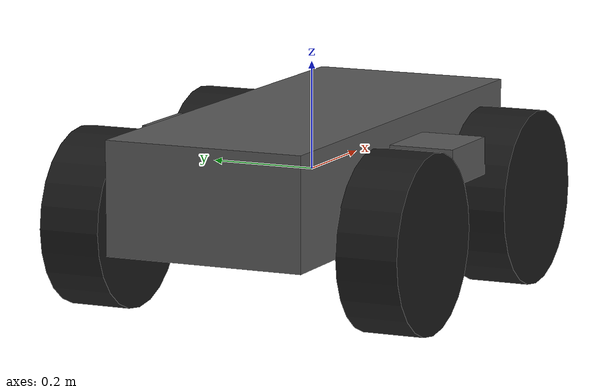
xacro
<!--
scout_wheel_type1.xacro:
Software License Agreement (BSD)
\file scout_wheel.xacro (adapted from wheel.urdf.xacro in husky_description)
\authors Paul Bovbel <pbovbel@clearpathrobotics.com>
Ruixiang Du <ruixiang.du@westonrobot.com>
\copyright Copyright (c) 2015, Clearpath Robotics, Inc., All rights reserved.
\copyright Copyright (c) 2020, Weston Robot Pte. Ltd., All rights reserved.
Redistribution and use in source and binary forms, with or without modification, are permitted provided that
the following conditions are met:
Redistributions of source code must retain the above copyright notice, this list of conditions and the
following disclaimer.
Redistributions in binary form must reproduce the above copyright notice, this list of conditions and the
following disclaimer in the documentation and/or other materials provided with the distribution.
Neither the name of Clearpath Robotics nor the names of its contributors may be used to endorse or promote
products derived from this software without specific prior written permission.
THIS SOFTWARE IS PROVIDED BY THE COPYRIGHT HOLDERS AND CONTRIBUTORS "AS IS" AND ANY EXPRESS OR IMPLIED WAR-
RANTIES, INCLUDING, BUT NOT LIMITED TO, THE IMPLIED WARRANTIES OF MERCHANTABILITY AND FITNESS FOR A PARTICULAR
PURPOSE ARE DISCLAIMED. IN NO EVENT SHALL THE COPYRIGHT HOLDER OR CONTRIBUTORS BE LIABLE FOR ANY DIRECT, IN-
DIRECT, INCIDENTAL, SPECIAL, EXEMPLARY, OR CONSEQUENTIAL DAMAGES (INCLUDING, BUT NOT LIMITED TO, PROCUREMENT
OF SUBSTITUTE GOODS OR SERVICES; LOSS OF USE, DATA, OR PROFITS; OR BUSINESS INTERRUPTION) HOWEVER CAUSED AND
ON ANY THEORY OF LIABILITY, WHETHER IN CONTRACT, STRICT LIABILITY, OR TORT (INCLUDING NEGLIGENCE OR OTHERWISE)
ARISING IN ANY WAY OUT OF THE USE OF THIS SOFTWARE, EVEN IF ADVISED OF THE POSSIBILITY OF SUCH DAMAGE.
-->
<?xml version="1.0"?>

<robot name="scout_v2"
    xmlns:xacro="http://ros.org/wiki/xacro">

    <xacro:arg name="robot_namespace" default="/" />

    <xacro:include filename="$(find scout_description)/urdf/scout_wheel_type1.xacro" />
    <xacro:include filename="$(find scout_description)/urdf/scout_wheel_type2.xacro" />
    <xacro:include filename="$(find scout_description)/urdf/gazebo.xacro" />

    <!-- Variables -->
    <xacro:property name="M_PI" value="3.14159"/>

    <!-- Vehicle Geometries -->
    <xacro:property name="base_x_size" value="0.9250000" />
    <xacro:property name="base_y_size" value="0.380000" />
    <xacro:property name="base_z_size" value="0.210000" />

    <xacro:property name="wheelbase" value="0.498" />
    <xacro:property name="track" value="0.58306" />
    <xacro:property name="wheel_vertical_offset" value="-0.0702" />

    <xacro:property name="wheel_length" value="1.1653e-01" />
    <xacro:property name="wheel_radius" value="1.6459e-01" />

    <!-- Base link -->
    <link name="base_link">
        <visual>
            <origin xyz="0 0 0.008" rpy="0 0 0" />
            <geometry>
                <box size="${base_x_size} ${base_y_size} ${base_z_size}"/>
            </geometry>
            <material name="scout_body_gray">
                <color rgba="0.35 0.35 0.35 1.0"/>
            </material>
        </visual>
        <visual>
            <origin xyz="0 0 ${base_z_size/6}" rpy="0 0 0" />
            <geometry>
                <box size="${base_x_size/6} ${base_y_size*1.65} ${base_z_size/3}"/>
            </geometry>
            <material name="scout_body_gray">
                <color rgba="0.35 0.35 0.35 1.0"/>
            </material>
        </visual>
        <collision>
            <origin xyz="0 0 0.008" rpy="0 0 0" />
            <geometry>
                <box size="${base_x_size} ${base_y_size} ${base_z_size}"/>
            </geometry>
        </collision>
        <collision>
            <origin xyz="0 0 ${base_z_size/6}" rpy="0 0 0" />
            <geometry>
                <box size="${base_x_size/6} ${base_y_size*1.65} ${base_z_size/3}"/>
            </geometry>
        </collision>
    </link>

    <link name="base_footprint"/>

    <joint name="base_footprint_joint" type="fixed">
        <origin xyz="0 0 ${wheel_vertical_offset - wheel_radius}" rpy="0 0 0" />
        <parent link="base_link" />
        <child link="base_footprint" />
    </joint>

    <link name="inertial_link">
        <inertial>
            <mass value="40" />
            <origin xyz="0.0 0.0 0.0" />
            <inertia ixx="2.288641" ixy="0" ixz="0" iyy="5.103976" iyz="0" izz="3.431465" />
        </inertial>
    </link>

    <joint name="inertial_joint" type="fixed">
        <origin xyz="0 0 0" rpy="0 0 0" />
        <parent link="base_link" />
        <child link="inertial_link" />
    </joint>

    <!-- Scout wheel macros -->
    <!-- wheel labeled from 0 to 3, conter-clockwise, starting from front right wheel -->
    <!-- motor 1 and 2 (left side) are mechanically installed in a reversed direction -->
    <xacro:scout_wheel_type1 wheel_prefix="front_right">
        <origin xyz="${wheelbase/2} ${-track/2} ${wheel_vertical_offset}" rpy="0 0 0" />
    </xacro:scout_wheel_type1>
    <xacro:scout_wheel_type2 wheel_prefix="front_left">
        <origin xyz="${wheelbase/2} ${track/2} ${wheel_vertical_offset}" rpy="0 0 0" />
    </xacro:scout_wheel_type2>
    <xacro:scout_wheel_type1 wheel_prefix="rear_left">
        <origin xyz="${-wheelbase/2} ${track/2} ${wheel_vertical_offset}" rpy="0 0 0" />
    </xacro:scout_wheel_type1>
    <xacro:scout_wheel_type2 wheel_prefix="rear_right">
        <origin xyz="${-wheelbase/2} ${-track/2} ${wheel_vertical_offset}" rpy="0 0 0" />
    </xacro:scout_wheel_type2>

</robot>

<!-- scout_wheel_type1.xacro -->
<robot xmlns:xacro="http://ros.org/wiki/xacro" name="scout_wheel">

    <xacro:macro name="scout_wheel_type1" params="wheel_prefix *joint_pose">
        <link name="${wheel_prefix}_wheel_link">
            <inertial>
                <mass value="3" />
                <origin xyz="0 0 0" />
                <inertia ixx="0.7171" ixy="0" ixz="0" iyy="0.1361" iyz="0" izz="0.7171" />
            </inertial>
            <visual>
                <origin xyz="0 0 0" rpy="${M_PI/2} 0 0" />
                <geometry>
                    <cylinder length="${wheel_length}" radius="${wheel_radius}" />
                </geometry>
                <material name="scout_wheel_black">
                    <color rgba="0.1 0.1 0.1 1.0"/>
                </material>
            </visual>
            <collision>
                <origin xyz="0 0 0" rpy="${M_PI/2} 0 0" />
                <geometry>
                    <cylinder length="${wheel_length}" radius="${wheel_radius}" />
                </geometry>
            </collision>
        </link>

        <joint name="${wheel_prefix}_wheel" type="continuous">
            <parent link="base_link"/>
            <child link="${wheel_prefix}_wheel_link"/>
            <xacro:insert_block name="joint_pose"/>
            <axis xyz="0 -1 0" rpy="0 0 0" />
        </joint>
    </xacro:macro>

</robot>

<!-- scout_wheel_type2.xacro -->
<robot xmlns:xacro="http://ros.org/wiki/xacro" name="scout_wheel">

    <xacro:macro name="scout_wheel_type2" params="wheel_prefix *joint_pose">
        <link name="${wheel_prefix}_wheel_link">
            <inertial>
                <mass value="3" />
                <origin xyz="0 0 0" />
                <inertia ixx="0.7171" ixy="0" ixz="0" iyy="0.1361" iyz="0" izz="0.7171" />
            </inertial>
            <visual>
                <origin xyz="0 0 0" rpy="${M_PI/2} 0 0" />
                <geometry>
                    <cylinder length="${wheel_length}" radius="${wheel_radius}" />
                </geometry>
                <material name="scout_wheel_black">
                    <color rgba="0.1 0.1 0.1 1.0"/>
                </material>
            </visual>
            <collision>
                <origin xyz="0 0 0" rpy="${M_PI/2} 0 0" />
                <geometry>
                    <cylinder length="${wheel_length}" radius="${wheel_radius}" />
                </geometry>
            </collision>
        </link>

        <joint name="${wheel_prefix}_wheel" type="continuous">
            <parent link="base_link"/>
            <child link="${wheel_prefix}_wheel_link"/>
            <xacro:insert_block name="joint_pose"/>
            <axis xyz="0 -1 0" rpy="0 0 0" />
        </joint>
    </xacro:macro>

</robot>

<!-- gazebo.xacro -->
<robot xmlns:xacro="http://ros.org/wiki/xacro">

    <gazebo>
        <plugin filename="gz-sim-sensors-system" name="gz::sim::systems::Sensors">
            <render_engine>ogre2</render_engine>
        </plugin>
        <plugin filename="gz-sim-diff-drive-system" name="gz::sim::systems::DiffDrive">
            <left_joint>front_left_wheel</left_joint>
            <left_joint>rear_left_wheel</left_joint>
            <right_joint>front_right_wheel</right_joint>
            <right_joint>rear_right_wheel</right_joint>
            <wheel_separation>0.58306</wheel_separation>
            <wheel_radius>0.16459</wheel_radius>
            <odom_publish_frequency>50</odom_publish_frequency>
            <topic>cmd_vel</topic>
            <odom_topic>odom</odom_topic>
            <frame_id>odom</frame_id>
            <child_frame_id>base_link</child_frame_id>
            <tf_topic>tf</tf_topic>
        </plugin>
        <plugin filename="gz-sim-joint-state-publisher-system" name="gz::sim::systems::JointStatePublisher">
            <topic>joint_states</topic>
        </plugin>
    </gazebo>

    <link name="zed_x_camera">
        <collision>
            <origin xyz="0 0 0" rpy="0 0 0"/>
            <geometry><box size="0.05 0.1 0.01"/></geometry>
        </collision>
        <inertial>
            <origin xyz="0 0 0" rpy="0 0 0"/>
            <mass value="0.01"/>
            <inertia ixx="0.01" ixy="0" ixz="0" iyy="0.01" iyz="0" izz="0.01"/>
        </inertial>
    </link>

    <joint name="base_to_zed_x_camera" type="fixed">
        <parent link="base_link"/>
        <child link="zed_x_camera"/>
        <origin xyz="0.25 0.0 0.25" rpy="0 0.349066 0"/>
    </joint>

    <gazebo reference="base_to_zed_x_camera">
        <preserveFixedJoint>true</preserveFixedJoint>
    </gazebo>

    <gazebo reference="zed_x_camera">
        <sensor name="zed_x_camera" type="depth_camera">
            <always_on>1</always_on>
            <update_rate>15</update_rate>
            <visualize>true</visualize>
            <topic>zed_x_camera</topic>
            <camera>
                <horizontal_fov>1.845264</horizontal_fov>
                <image>
                    <width>240</width>
                    <height>150</height>
                    <format>R_FLOAT32</format>
                </image>
                <clip><near>0.3</near><far>20.0</far></clip>
                <optical_frame_id>zed_x_camera</optical_frame_id>
                <depth_camera><output>depths</output></depth_camera>
            </camera>
        </sensor>
    </gazebo>

</robot>
